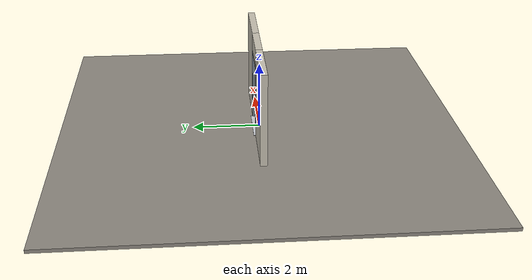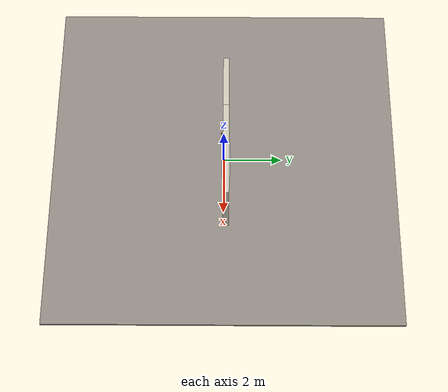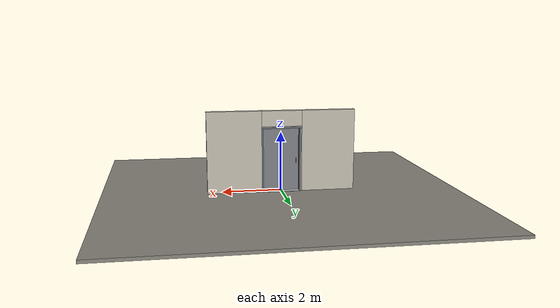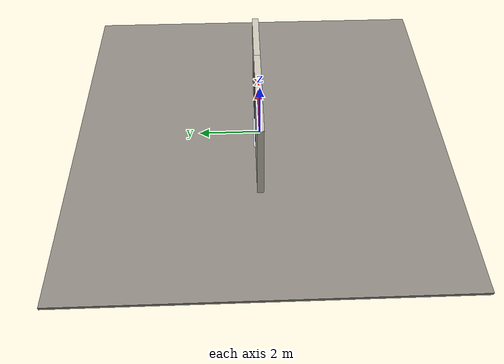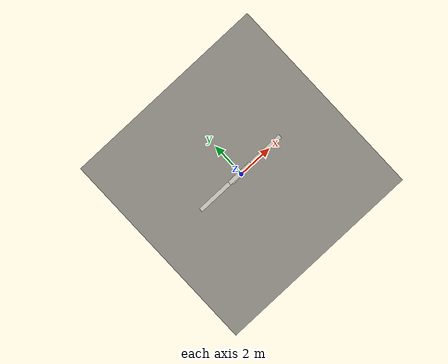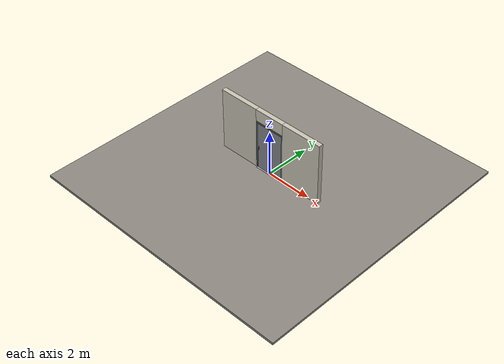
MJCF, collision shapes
<?xml version="1.0" ?>
<mujoco model="db0307_swing_single_minimal">
  <compiler angle="radian" meshdir="../../hardware" texturedir="../../textures" autolimits="true" inertiafromgeom="false"/>
  <option timestep="0.002" integrator="implicitfast" cone="elliptic" impratio="10" noslip_iterations="3">
    <flag multiccd="enable"/>
  </option>
  <size memory="16M"/>
  <default>
    <geom condim="4" solref="0.005 1" solimp="0.95 0.99 0.001"/>
    <joint solreflimit="0.005 1" solimplimit="0.95 0.99 0.001"/>
    <tendon solreflimit="0.005 1"/>
    <equality solref="0.002 1"/>
  </default>
  <visual>
    <headlight ambient="0.4 0.4 0.4" diffuse="0.7 0.7 0.7" specular="0.2 0.2 0.2"/>
    <quality shadowsize="4096"/>
    <map znear="0.01" zfar="60"/>
  </visual>
  <asset>
    <mesh name="pull_1e5d69a91a" file="pull_1e5d69a91a.obj"/>
    <material name="mat_floor" rgba="0.55 0.53 0.5 1" specular="0.2" shininess="0.15" reflectance="0"/>
    <material name="mat_wall" rgba="0.78 0.76 0.7 1" specular="0.2" shininess="0.1" reflectance="0"/>
    <material name="mat_leaf" rgba="0.5 0.51 0.53 1" specular="0.23" shininess="0.63" reflectance="0.02"/>
    <material name="mat_hinge" rgba="0.65 0.66 0.68 1" specular="0.74" shininess="0.5" reflectance="0.36"/>
    <material name="mat_op_stainless" rgba="0.75 0.76 0.77 1" specular="0.8" shininess="0.65" reflectance="0.4"/>
    <material name="mat_frame" rgba="0.45 0.48 0.52 1" specular="0.32" shininess="0.6" reflectance="0.08"/>
    <material name="mat_seal" rgba="0.1 0.1 0.1 1" specular="0.2" shininess="0.1" reflectance="0"/>
    <material name="mat_threshold" rgba="0.8 0.81 0.83 1" specular="0.8" shininess="0.6" reflectance="0.4"/>
    <material name="mat_closer" rgba="0.22 0.17 0.13 1" specular="0.8" shininess="0.6" reflectance="0.4"/>
    <material name="mat_kick" rgba="0.75 0.76 0.77 1" specular="0.8" shininess="0.65" reflectance="0.4"/>
    <material name="mat_placard" rgba="0.95 0.75 0.05 1" specular="0.2" shininess="0.5" reflectance="0"/>
    <material name="mat_stop" rgba="0.9 0.9 0.92 1" specular="0.8" shininess="0.9" reflectance="0.4"/>
    <texture name="skybox" type="skybox" builtin="gradient" rgb1="0.6 0.7 0.85" rgb2="0.9 0.92 0.95" width="256" height="256"/>
  </asset>
  <worldbody>
    <light name="sun" pos="1.5 -2.5 4" dir="-0.3 0.5 -0.8" directional="true" diffuse="0.8 0.8 0.8" specular="0.3 0.3 0.3" castshadow="true"/>
    <light name="fill" pos="-1.5 2.5 3" dir="0.3 -0.5 -0.7" directional="true" diffuse="0.35 0.35 0.4" castshadow="false"/>
    <camera name="robot_view" pos="0 -2.566812 1.812087" xyaxes="1 0 0 0 0.26963 0.962964" fovy="52"/>
    <camera name="far_view" pos="0 2.708813 1.812087" xyaxes="-1 0 0 0 -0.26963 0.962964" fovy="52"/>
    <camera name="iso" pos="-2.004737 -2.144762 2.234138" xyaxes="0.741536 -0.670913 0 0.242917 0.268487 0.932151" fovy="46"/>
    <camera name="detail_handle" pos="-0.324 -0.882 1.32" xyaxes="0.97561 0.219512 0 -0.070934 0.315262 0.94635" fovy="38"/>
    <geom name="floor" type="box" size="6 6 0.05" pos="0 0 -0.05" material="mat_floor" group="0" contype="1" conaffinity="1" friction="0.8 0.005 0.0001" density="2400"/>
    <geom name="wall_left" type="box" size="0.9035 0.1 1.3735" pos="-1.5965 0.071 1.3735" material="mat_wall" group="0" contype="1" conaffinity="1" friction="0.6 0.005 0.0001" density="800"/>
    <geom name="wall_right" type="box" size="0.9185 0.1 1.3735" pos="1.5815 0.071 1.3735" material="mat_wall" group="0" contype="1" conaffinity="1" friction="0.6 0.005 0.0001" density="800"/>
    <geom name="wall_header" type="box" size="0.678 0.1 0.26" pos="-0.015 0.071 2.487" material="mat_wall" group="0" contype="1" conaffinity="1" friction="0.6 0.005 0.0001" density="800"/>
    <geom name="jamb_hinge" type="box" size="0.025 0.1 1.0735" pos="0.638 0.071 1.0735" material="mat_frame" group="0" contype="1" conaffinity="1" friction="0.6 0.005 0.0001" density="300"/>
    <geom name="jamb_strike" type="box" size="0.025 0.1 1.0735" pos="-0.638 0.071 1.0735" material="mat_frame" group="0" contype="1" conaffinity="1" friction="0.6 0.005 0.0001" density="300"/>
    <geom name="stud_strike" type="box" size="0.015 0.1 1.0735" pos="-0.678 0.071 1.0735" material="mat_wall" group="0" contype="1" conaffinity="1" friction="0.6 0.005 0.0001" density="500"/>
    <geom name="jamb_head" type="box" size="0.678 0.1 0.025" pos="-0.015 0.071 2.172" material="mat_frame" group="0" contype="1" conaffinity="1" friction="0.6 0.005 0.0001" density="300"/>
    <geom name="head_stud" type="box" size="0.678 0.1 0.015" pos="-0.015 0.071 2.212" material="mat_wall" group="0" contype="1" conaffinity="1" friction="0.6 0.005 0.0001" density="500"/>
    <geom name="stop_hinge" type="box" size="0.0055 0.016 1.0735" pos="0.6075 0.0385 1.0735" material="mat_frame" group="0" contype="1" conaffinity="1" friction="0.6 0.005 0.0001" density="300"/>
    <geom name="stop_strike" type="box" size="0.0055 0.016 1.0735" pos="-0.6075 0.0385 1.0735" material="mat_frame" group="0" contype="1" conaffinity="1" friction="0.6 0.005 0.0001" density="300"/>
    <geom name="stop_head" type="box" size="0.613 0.016 0.0055" pos="0 0.0385 2.1415" material="mat_frame" group="0" contype="1" conaffinity="1" friction="0.6 0.005 0.0001" density="300"/>
    <geom name="threshold" type="box" size="0.663 0.15 0.004" pos="0 0.071 0.004" material="mat_threshold" group="0" contype="1" conaffinity="1" friction="0.6 0.005 0.0001" density="2700"/>
    <site name="approach_point" pos="0 -1.5 0" quat="1 0 0 0" size="0.05" rgba="0.2 0.9 0.2 0.5" group="4"/>
    <site name="goal_point" pos="0 1.5 0" quat="1 0 0 0" size="0.05" rgba="0.2 0.9 0.2 0.5" group="4"/>
    <site name="door_plane_center" pos="0 0 1.0735" quat="1 0 0 0" size="0.02" rgba="0.2 0.9 0.2 0.5" group="4"/>
    <body name="leaf" pos="0.613 0 0">
      <inertial pos="-0.619475 0 1.075502" mass="70.227221" quat="0.500249 -0.500249 -0.499751 -0.499751" diaginertia="8.836357354 26.303396272 35.106477125"/>
      <joint name="leaf_hinge" type="hinge" axis="0 0 1" pos="-0.003 -0.029 0" limited="true" range="0 1.658063" solreflimit="0.02 1" damping="12.850995" frictionloss="2.087933" stiffness="16.647607" springref="-2.66705" armature="0.02"/>
      <geom name="leaf_slab" type="box" size="0.6095 0.022 1.067" pos="-0.6125 0 1.076" material="mat_leaf" group="0" contype="1" conaffinity="1" friction="0.42 0.005 0.0001" density="1"/>
      <geom name="leaf_pull_n" type="mesh" mesh="pull_1e5d69a91a" pos="-1.117 -0.022 1.04" quat="0 0 -0.707107 0.707107" material="mat_op_stainless" group="1" contype="0" conaffinity="0" density="3000"/>
      <geom name="leaf_pull_col_n" type="capsule" size="0.0095 0.08" pos="-1.117 -0.082 1.04" material="mat_op_stainless" group="3" contype="1" conaffinity="1" rgba="0.8 0.3 0.3 0.25" friction="0.7 0.01 0.0001" density="3000"/>
      <geom name="leaf_pull_p" type="mesh" mesh="pull_1e5d69a91a" pos="-1.117 0.022 1.04" quat="0 0 0.707107 0.707107" material="mat_op_stainless" group="1" contype="0" conaffinity="0" density="3000"/>
      <geom name="leaf_pull_col_p" type="capsule" size="0.0095 0.08" pos="-1.117 0.082 1.04" material="mat_op_stainless" group="3" contype="1" conaffinity="1" rgba="0.8 0.3 0.3 0.25" friction="0.7 0.01 0.0001" density="3000"/>
      <site name="leaf_pull_grip_n" pos="-1.117 -0.082 1.04" quat="1 0 0 0" size="0.012" rgba="0.2 0.9 0.2 0.5" group="4"/>
      <site name="leaf_pull_grip_p" pos="-1.117 0.082 1.04" quat="1 0 0 0" size="0.012" rgba="0.2 0.9 0.2 0.5" group="4"/>
      <site name="leaf_edge_mid" pos="-1.222 0 1.067" quat="1 0 0 0" size="0.02" rgba="0.2 0.9 0.2 0.5" group="4"/>
    </body>
  </worldbody>
  <sensor>
    <jointpos name="leaf_hinge_pos" joint="leaf_hinge"/>
    <jointvel name="leaf_hinge_vel" joint="leaf_hinge"/>
  </sensor>
</mujoco>
